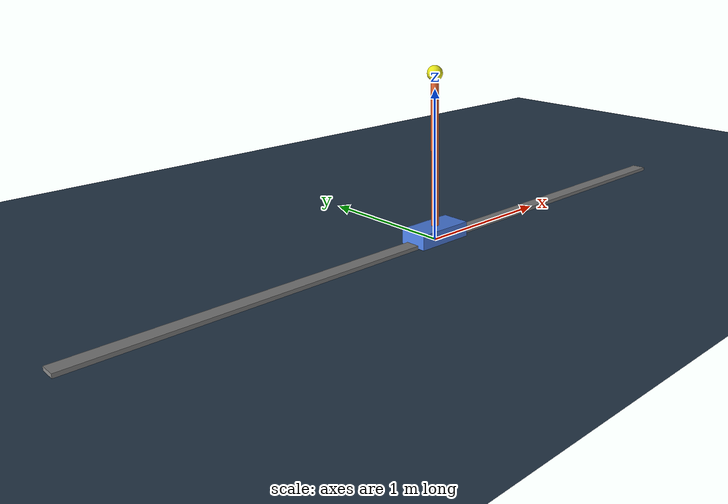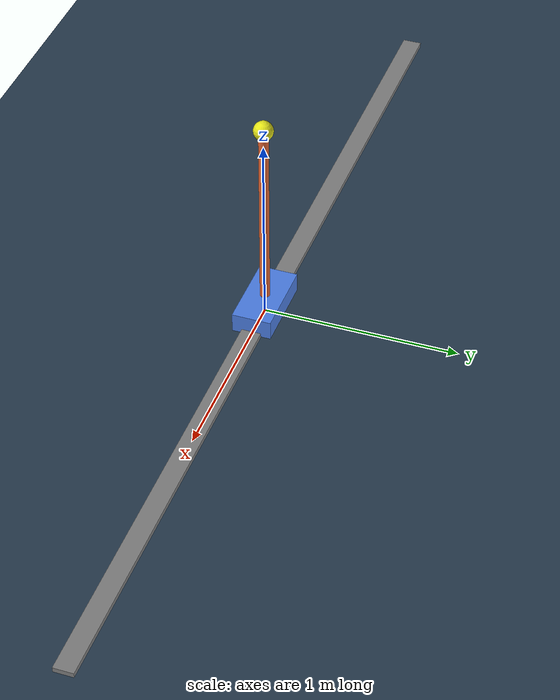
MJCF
<!-- inverted_pendulum.xml -->
<mujoco model="inverted_pendulum">
  <!-- Simulation parameters -->
  <option integrator="RK4" timestep="0.001" gravity="0 0 -9.81"/>

  <!-- Visual settings for rendering -->
  <visual>
    <headlight diffuse="0.6 0.6 0.6" ambient="0.4 0.4 0.4" specular="0 0 0"/>
    <rgba haze="0.15 0.25 0.35 1"/>
    <global azimuth="120" elevation="-20"/>
  </visual>

    <!-- Material definitions -->
  <asset>
    <texture type="skybox" builtin="gradient" rgb1="0.3 0.5 0.7" rgb2="0 0 0"
             width="512" height="512"/>
    <texture type="2d" name="groundplane" builtin="checker" mark="edge"
             rgb1="0.2 0.3 0.4" rgb2="0.1 0.15 0.2" markrgb="0.8 0.8 0.8"
             width="300" height="300"/>
    <material name="groundplane" texture="groundplane" texuniform="true"
              texrepeat="5 5" reflectance="0.2"/>
    <material name="cart_material" rgba="0.4 0.6 0.8 1"/>
    <material name="pole_material" rgba="0.8 0.3 0.2 1"/>
    <material name="track_material" rgba="0.5 0.5 0.5 1"/>
  </asset>

  <!-- Physical parameters with realistic values -->
  <default>
    <joint armature="0.01" damping="0.1" limited="true"/>
    <geom contype="1" conaffinity="1" condim="3" friction="1 0.5 0.5"/>
  </default>

  <worldbody>
    <!-- Ground plane for visual reference -->
    <geom name="floor" type="plane" size="5 5 0.1" material="groundplane"/>

    <!-- Track/rail for the cart (visual only) -->
    <geom name="track" type="box" pos="0 0 0" size="2.5 0.05 0.02"
          material="track_material"
          contype="0" conaffinity="0"/>

    <!-- Cart: slides along X axis -->
    <body name="cart" pos="0 0 0.05">
      <joint name="slider" type="slide" axis="1 0 0"
             range="-3 3" damping="0.5"/>
      <geom type="box" size="0.2 0.1 0.05" mass="0.5"
            rgba="0.3 0.5 0.9 1"/>

      <!-- Pendulum: rotates in XZ plane, mounted on top of cart -->
      <body name="pole" pos="0 0 0.05">
        <joint name="hinge" type="hinge" axis="0 1 0" range="-90 90"
               damping="0.05"/>
        <!-- Rod: half-length = 0.5 m  => full length 1 m, mass 0.1 kg -->
        <geom type="capsule" fromto="0 0 0  0 0 1.0"
              size="0.025" mass="0.1" rgba="0.9 0.4 0.2 1"/>
        <!-- Bob at tip -->
        <geom type="sphere" pos="0 0 1.0" size="0.05"
              mass="0.01" rgba="0.9 0.9 0.1 1"/>
      </body>
    </body>
    <camera name="main" mode="fixed" pos="0 -4.5 1.5" xyaxes="1 0 0 0 0 1"/>
  </worldbody>

  <actuator>
    <!-- Force actuator on the cart slider.
         gear="1" means 1 N per unit control signal.
         ctrlrange limits the force to ±20 N. -->
    <motor name="force" joint="slider" gear="1"
           ctrlrange="-20 20" ctrllimited="true"/>
  </actuator>

  <sensor>
    <jointpos  name="cart_pos"   joint="slider"/>
    <jointvel  name="cart_vel"   joint="slider"/>
    <jointpos  name="pole_angle" joint="hinge"/>
    <jointvel  name="pole_angle_vel"   joint="hinge"/>
  </sensor>

</mujoco>
